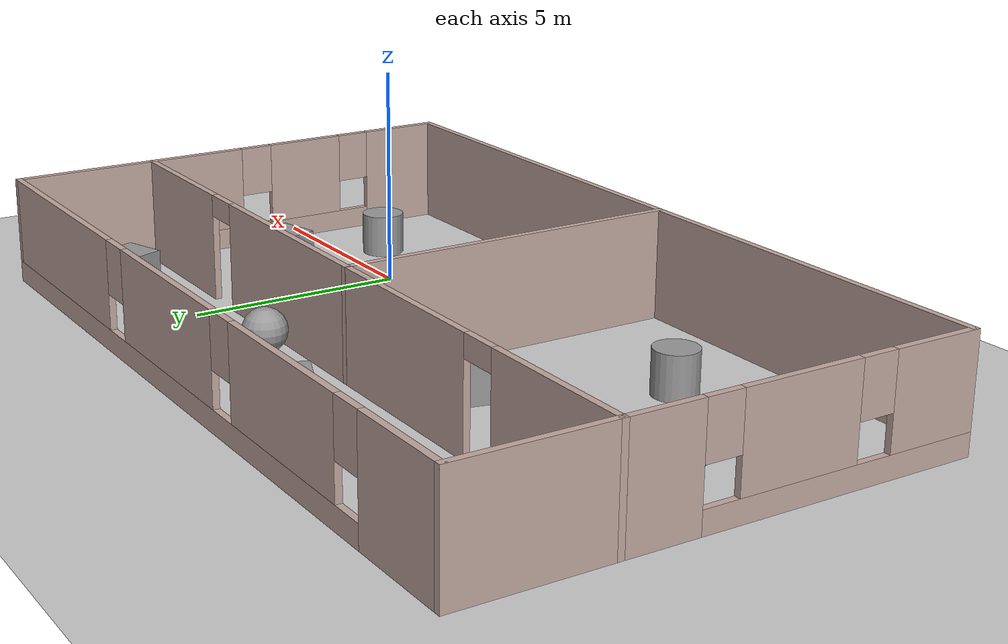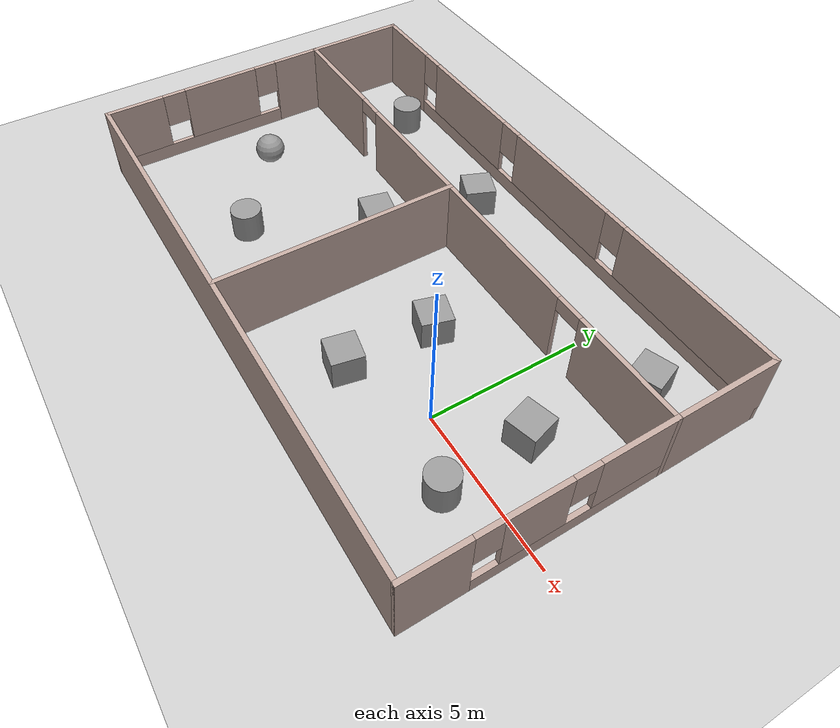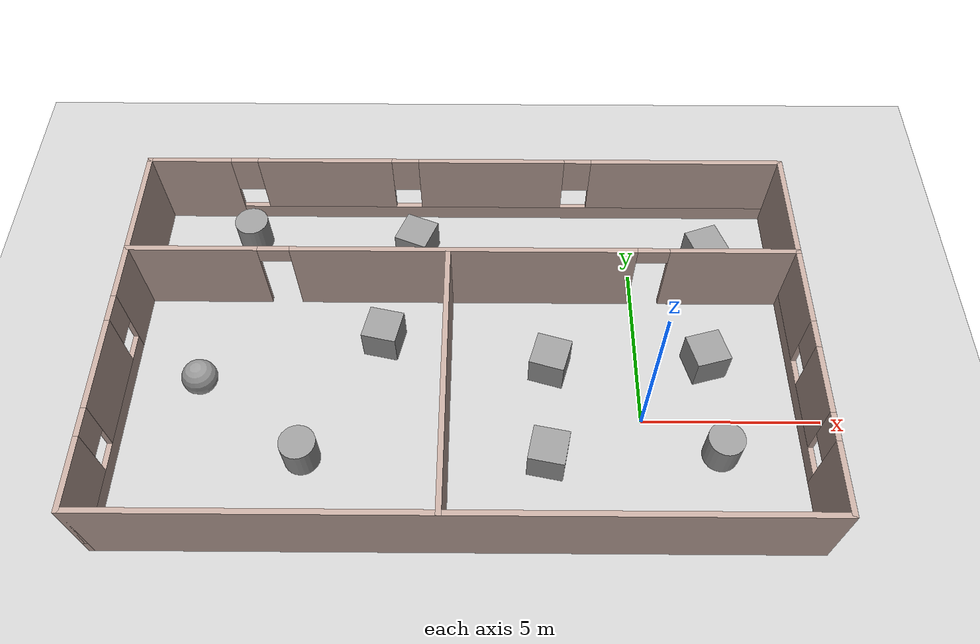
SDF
<sdf version="1.7">
 <world name="default">
  <light name="sun" type="directional">
   <pose>0 0 10 0 -0 0</pose>
   <diffuse>0.8 0.8 0.8 1</diffuse>
   <specular>0.2 0.2 0.2 1</specular>
   <attenuation>
    <range>1000</range>
    <constant>0.9</constant>
    <linear>0.01</linear>
    <quadratic>0.001</quadratic>
   </attenuation>
   <direction>-0.5 0.1 -0.9</direction>
   <spot><inner_angle>0</inner_angle><outer_angle>0</outer_angle><falloff>0</falloff></spot>
  </light>
  <model name="ground_plane">
   <static>1</static>
   <link name="link">
    <collision name="collision">
     <geometry><plane><normal>0 0 1</normal><size>100 100</size></plane></geometry>
     <surface><friction><ode><mu>100</mu><mu2>50</mu2></ode></friction></surface>
    </collision>
    <visual name="visual">
     <cast_shadows>0</cast_shadows>
     <geometry><plane><normal>0 0 1</normal><size>100 100</size></plane></geometry>
     <material>
      <script><uri>file://media/materials/scripts/gazebo.material</uri><name>Gazebo/Grey</name></script>
     </material>
    </visual>
   </link>
  </model>
  <gravity>0 0 -9.8</gravity>
  <magnetic_field>6e-06 2.3e-05 -4.2e-05</magnetic_field>
  <atmosphere type="adiabatic"/>
  <physics type="ode">
   <max_step_size>0.001</max_step_size>
   <real_time_factor>1</real_time_factor>
   <real_time_update_rate>1000</real_time_update_rate>
  </physics>
  <scene><ambient>0.4 0.4 0.4 1</ambient><background>0.7 0.7 0.7 1</background><shadows>1</shadows></scene>
  <spherical_coordinates>
   <surface_model>EARTH_WGS84</surface_model>
   <latitude_deg>0</latitude_deg>
   <longitude_deg>0</longitude_deg>
   <elevation>0</elevation>
   <heading_deg>0</heading_deg>
  </spherical_coordinates>
  <model name="emtry_room">
   <pose>-5.0249 1.84704 0 0 -0 0</pose>
   <link name="Wall_10">
    <pose>9.425 -1.675 0 0 -0 1.5708</pose>
    <visual name="Wall_10_Visual_0">
     <pose>-2.99004 0 1.25 0 -0 0</pose>
     <geometry><box><size>2.01992 0.15 2.5</size></box></geometry>
     <material>
      <script><uri>file://media/materials/scripts/gazebo.material</uri><name>Gazebo/Grey</name></script>
      <ambient>0.760784 0.662745 0.627451 1</ambient>
     </material>
     <meta><layer>0</layer></meta>
    </visual>
    <collision name="Wall_10_Collision_0">
     <geometry><box><size>2.01992 0.15 2.5</size></box></geometry>
     <pose>-2.99004 0 1.25 0 -0 0</pose>
    </collision>
    <visual name="Wall_10_Visual_1">
     <pose>1.00996 0 0.25 0 -0 0</pose>
     <geometry><box><size>5.98008 0.15 0.5</size></box></geometry>
     <material>
      <script><uri>file://media/materials/scripts/gazebo.material</uri><name>Gazebo/Grey</name></script>
      <ambient>0.760784 0.662745 0.627451 1</ambient>
     </material>
     <meta><layer>0</layer></meta>
    </visual>
    <collision name="Wall_10_Collision_1">
     <geometry><box><size>5.98008 0.15 0.5</size></box></geometry>
     <pose>1.00996 0 0.25 0 -0 0</pose>
    </collision>
    <visual name="Wall_10_Visual_2">
     <pose>-0.203813 0 1.5 0 -0 0</pose>
     <geometry><box><size>1.95254 0.15 2</size></box></geometry>
     <material>
      <script><uri>file://media/materials/scripts/gazebo.material</uri><name>Gazebo/Grey</name></script>
      <ambient>0.760784 0.662745 0.627451 1</ambient>
     </material>
     <meta><layer>0</layer></meta>
    </visual>
    <collision name="Wall_10_Collision_2">
     <geometry><box><size>1.95254 0.15 2</size></box></geometry>
     <pose>-0.203813 0 1.5 0 -0 0</pose>
    </collision>
    <visual name="Wall_10_Visual_3">
     <pose>2.78623 0 1.5 0 -0 0</pose>
     <geometry><box><size>2.42754 0.15 2</size></box></geometry>
     <material>
      <script><uri>file://media/materials/scripts/gazebo.material</uri><name>Gazebo/Grey</name></script>
      <ambient>0.760784 0.662745 0.627451 1</ambient>
     </material>
     <meta><layer>0</layer></meta>
    </visual>
    <collision name="Wall_10_Collision_3">
     <geometry><box><size>2.42754 0.15 2</size></box></geometry>
     <pose>2.78623 0 1.5 0 -0 0</pose>
    </collision>
    <visual name="Wall_10_Visual_4">
     <pose>-1.58008 0 1.9 0 -0 0</pose>
     <geometry><box><size>0.8 0.15 1.2</size></box></geometry>
     <material>
      <script><uri>file://media/materials/scripts/gazebo.material</uri><name>Gazebo/Grey</name></script>
      <ambient>0.760784 0.662745 0.627451 1</ambient>
     </material>
     <meta><layer>0</layer></meta>
    </visual>
    <collision name="Wall_10_Collision_4">
     <geometry><box><size>0.8 0.15 1.2</size></box></geometry>
     <pose>-1.58008 0 1.9 0 -0 0</pose>
    </collision>
    <visual name="Wall_10_Visual_5">
     <pose>1.17246 0 1.9 0 -0 0</pose>
     <geometry><box><size>0.8 0.15 1.2</size></box></geometry>
     <material>
      <script><uri>file://media/materials/scripts/gazebo.material</uri><name>Gazebo/Grey</name></script>
      <ambient>0.760784 0.662745 0.627451 1</ambient>
     </material>
     <meta><layer>0</layer></meta>
    </visual>
    <collision name="Wall_10_Collision_5">
     <geometry><box><size>0.8 0.15 1.2</size></box></geometry>
     <pose>1.17246 0 1.9 0 -0 0</pose>
    </collision>
   </link>
   <link name="Wall_11">
    <pose>0 2.25 0 0 -0 3.14159</pose>
    <visual name="Wall_11_Visual_0">
     <pose>-7.6643 0 1.25 0 -0 0</pose>
     <geometry><box><size>3.67141 0.15 2.5</size></box></geometry>
     <material>
      <script><uri>file://media/materials/scripts/gazebo.material</uri><name>Gazebo/Grey</name></script>
      <ambient>0.760784 0.662745 0.627451 1</ambient>
     </material>
     <meta><layer>0</layer></meta>
    </visual>
    <collision name="Wall_11_Collision_0">
     <geometry><box><size>3.67141 0.15 2.5</size></box></geometry>
     <pose>-7.6643 0 1.25 0 -0 0</pose>
    </collision>
    <visual name="Wall_11_Visual_1">
     <pose>-0.035419 0 1.25 0 -0 0</pose>
     <geometry><box><size>9.78634 0.15 2.5</size></box></geometry>
     <material>
      <script><uri>file://media/materials/scripts/gazebo.material</uri><name>Gazebo/Grey</name></script>
      <ambient>0.760784 0.662745 0.627451 1</ambient>
     </material>
     <meta><layer>0</layer></meta>
    </visual>
    <collision name="Wall_11_Collision_1">
     <geometry><box><size>9.78634 0.15 2.5</size></box></geometry>
     <pose>-0.035419 0 1.25 0 -0 0</pose>
    </collision>
    <visual name="Wall_11_Visual_2">
     <pose>7.62888 0 1.25 0 -0 0</pose>
     <geometry><box><size>3.74225 0.15 2.5</size></box></geometry>
     <material>
      <script><uri>file://media/materials/scripts/gazebo.material</uri><name>Gazebo/Grey</name></script>
      <ambient>0.760784 0.662745 0.627451 1</ambient>
     </material>
     <meta><layer>0</layer></meta>
    </visual>
    <collision name="Wall_11_Collision_2">
     <geometry><box><size>3.74225 0.15 2.5</size></box></geometry>
     <pose>7.62888 0 1.25 0 -0 0</pose>
    </collision>
    <visual name="Wall_11_Visual_3">
     <pose>-5.37859 0 2.25 0 -0 0</pose>
     <geometry><box><size>0.9 0.15 0.5</size></box></geometry>
     <material>
      <script><uri>file://media/materials/scripts/gazebo.material</uri><name>Gazebo/Grey</name></script>
      <ambient>0.760784 0.662745 0.627451 1</ambient>
     </material>
     <meta><layer>0</layer></meta>
    </visual>
    <collision name="Wall_11_Collision_3">
     <geometry><box><size>0.9 0.15 0.5</size></box></geometry>
     <pose>-5.37859 0 2.25 0 -0 0</pose>
    </collision>
    <visual name="Wall_11_Visual_4">
     <pose>5.30775 0 2.25 0 -0 0</pose>
     <geometry><box><size>0.9 0.15 0.5</size></box></geometry>
     <material>
      <script><uri>file://media/materials/scripts/gazebo.material</uri><name>Gazebo/Grey</name></script>
      <ambient>0.760784 0.662745 0.627451 1</ambient>
     </material>
     <meta><layer>0</layer></meta>
    </visual>
    <collision name="Wall_11_Collision_4">
     <geometry><box><size>0.9 0.15 0.5</size></box></geometry>
     <pose>5.30775 0 2.25 0 -0 0</pose>
    </collision>
   </link>
   <link name="Wall_12">
    <collision name="Wall_12_Collision">
     <geometry><box><size>0.15 0.15 2.5</size></box></geometry>
     <pose>0 0 1.25 0 -0 0</pose>
    </collision>
    <visual name="Wall_12_Visual">
     <pose>0 0 1.25 0 -0 0</pose>
     <geometry><box><size>0.15 0.15 2.5</size></box></geometry>
     <material>
      <script><uri>file://media/materials/scripts/gazebo.material</uri><name>Gazebo/Grey</name></script>
      <ambient>1 1 1 1</ambient>
     </material>
     <meta><layer>0</layer></meta>
    </visual>
    <pose>-9.425 2.25 0 0 -0 0</pose>
   </link>
   <link name="Wall_14">
    <collision name="Wall_14_Collision">
     <geometry><box><size>8 0.15 2.5</size></box></geometry>
     <pose>0 0 1.25 0 -0 0</pose>
    </collision>
    <visual name="Wall_14_Visual">
     <pose>0 0 1.25 0 -0 0</pose>
     <geometry><box><size>8 0.15 2.5</size></box></geometry>
     <material>
      <script><uri>file://media/materials/scripts/gazebo.material</uri><name>Gazebo/Grey</name></script>
      <ambient>0.760784 0.662745 0.627451 1</ambient>
     </material>
     <meta><layer>0</layer></meta>
    </visual>
    <pose>-0.392584 -1.67222 0 0 -0 -1.5708</pose>
   </link>
   <link name="Wall_16">
    <collision name="Wall_16_Collision">
     <geometry><box><size>3.5 0.15 2.5</size></box></geometry>
     <pose>0 0 1.25 0 -0 0</pose>
    </collision>
    <visual name="Wall_16_Visual">
     <pose>0 0 1.25 0 -0 0</pose>
     <geometry><box><size>3.5 0.15 2.5</size></box></geometry>
     <material>
      <script><uri>file://media/materials/scripts/gazebo.material</uri><name>Gazebo/Grey</name></script>
      <ambient>0.760784 0.662745 0.627451 1</ambient>
     </material>
     <meta><layer>0</layer></meta>
    </visual>
    <pose>-9.425 3.925 0 0 -0 1.5708</pose>
   </link>
   <link name="Wall_17">
    <pose>0 5.6 0 0 -0 0</pose>
    <visual name="Wall_17_Visual_0">
     <pose>-8.24468 0 1.25 0 -0 0</pose>
     <geometry><box><size>2.51064 0.15 2.5</size></box></geometry>
     <material>
      <script><uri>file://media/materials/scripts/gazebo.material</uri><name>Gazebo/Grey</name></script>
      <ambient>0.760784 0.662745 0.627451 1</ambient>
     </material>
     <meta><layer>0</layer></meta>
    </visual>
    <collision name="Wall_17_Collision_0">
     <geometry><box><size>2.51064 0.15 2.5</size></box></geometry>
     <pose>-8.24468 0 1.25 0 -0 0</pose>
    </collision>
    <visual name="Wall_17_Visual_1">
     <pose>1.25532 0 0.25 0 -0 0</pose>
     <geometry><box><size>16.4894 0.15 0.5</size></box></geometry>
     <material>
      <script><uri>file://media/materials/scripts/gazebo.material</uri><name>Gazebo/Grey</name></script>
      <ambient>0.760784 0.662745 0.627451 1</ambient>
     </material>
     <meta><layer>0</layer></meta>
    </visual>
    <collision name="Wall_17_Collision_1">
     <geometry><box><size>16.4894 0.15 0.5</size></box></geometry>
     <pose>1.25532 0 0.25 0 -0 0</pose>
    </collision>
    <visual name="Wall_17_Visual_2">
     <pose>-4.18241 0 1.5 0 -0 0</pose>
     <geometry><box><size>4.0139 0.15 2</size></box></geometry>
     <material>
      <script><uri>file://media/materials/scripts/gazebo.material</uri><name>Gazebo/Grey</name></script>
      <ambient>0.760784 0.662745 0.627451 1</ambient>
     </material>
     <meta><layer>0</layer></meta>
    </visual>
    <collision name="Wall_17_Collision_2">
     <geometry><box><size>4.0139 0.15 2</size></box></geometry>
     <pose>-4.18241 0 1.5 0 -0 0</pose>
    </collision>
    <visual name="Wall_17_Visual_3">
     <pose>0.803414 0 1.5 0 -0 0</pose>
     <geometry><box><size>4.35775 0.15 2</size></box></geometry>
     <material>
      <script><uri>file://media/materials/scripts/gazebo.material</uri><name>Gazebo/Grey</name></script>
      <ambient>0.760784 0.662745 0.627451 1</ambient>
     </material>
     <meta><layer>0</layer></meta>
    </visual>
    <collision name="Wall_17_Collision_3">
     <geometry><box><size>4.35775 0.15 2</size></box></geometry>
     <pose>0.803414 0 1.5 0 -0 0</pose>
    </collision>
    <visual name="Wall_17_Visual_4">
     <pose>6.64114 0 1.5 0 -0 0</pose>
     <geometry><box><size>5.71771 0.15 2</size></box></geometry>
     <material>
      <script><uri>file://media/materials/scripts/gazebo.material</uri><name>Gazebo/Grey</name></script>
      <ambient>0.760784 0.662745 0.627451 1</ambient>
     </material>
     <meta><layer>0</layer></meta>
    </visual>
    <collision name="Wall_17_Collision_4">
     <geometry><box><size>5.71771 0.15 2</size></box></geometry>
     <pose>6.64114 0 1.5 0 -0 0</pose>
    </collision>
    <visual name="Wall_17_Visual_5">
     <pose>-6.58936 0 1.9 0 -0 0</pose>
     <geometry><box><size>0.8 0.15 1.2</size></box></geometry>
     <material>
      <script><uri>file://media/materials/scripts/gazebo.material</uri><name>Gazebo/Grey</name></script>
      <ambient>0.760784 0.662745 0.627451 1</ambient>
     </material>
     <meta><layer>0</layer></meta>
    </visual>
    <collision name="Wall_17_Collision_5">
     <geometry><box><size>0.8 0.15 1.2</size></box></geometry>
     <pose>-6.58936 0 1.9 0 -0 0</pose>
    </collision>
    <visual name="Wall_17_Visual_6">
     <pose>-1.77546 0 1.9 0 -0 0</pose>
     <geometry><box><size>0.8 0.15 1.2</size></box></geometry>
     <material>
      <script><uri>file://media/materials/scripts/gazebo.material</uri><name>Gazebo/Grey</name></script>
      <ambient>0.760784 0.662745 0.627451 1</ambient>
     </material>
     <meta><layer>0</layer></meta>
    </visual>
    <collision name="Wall_17_Collision_6">
     <geometry><box><size>0.8 0.15 1.2</size></box></geometry>
     <pose>-1.77546 0 1.9 0 -0 0</pose>
    </collision>
    <visual name="Wall_17_Visual_7">
     <pose>3.38229 0 1.9 0 -0 0</pose>
     <geometry><box><size>0.8 0.15 1.2</size></box></geometry>
     <material>
      <script><uri>file://media/materials/scripts/gazebo.material</uri><name>Gazebo/Grey</name></script>
      <ambient>0.760784 0.662745 0.627451 1</ambient>
     </material>
     <meta><layer>0</layer></meta>
    </visual>
    <collision name="Wall_17_Collision_7">
     <geometry><box><size>0.8 0.15 1.2</size></box></geometry>
     <pose>3.38229 0 1.9 0 -0 0</pose>
    </collision>
   </link>
   <link name="Wall_18">
    <collision name="Wall_18_Collision">
     <geometry><box><size>3.5 0.15 2.5</size></box></geometry>
     <pose>0 0 1.25 0 -0 0</pose>
    </collision>
    <visual name="Wall_18_Visual">
     <pose>0 0 1.25 0 -0 0</pose>
     <geometry><box><size>3.5 0.15 2.5</size></box></geometry>
     <material>
      <script><uri>file://media/materials/scripts/gazebo.material</uri><name>Gazebo/Grey</name></script>
      <ambient>0.760784 0.662745 0.627451 1</ambient>
     </material>
     <meta><layer>0</layer></meta>
    </visual>
    <pose>9.425 3.925 0 0 -0 -1.5708</pose>
   </link>
   <link name="Wall_8">
    <pose>-9.425 -1.675 0 0 -0 -1.5708</pose>
    <visual name="Wall_8_Visual_0">
     <pose>-3.13319 0 1.25 0 -0 0</pose>
     <geometry><box><size>1.73362 0.15 2.5</size></box></geometry>
     <material>
      <script><uri>file://media/materials/scripts/gazebo.material</uri><name>Gazebo/Grey</name></script>
      <ambient>0.760784 0.662745 0.627451 1</ambient>
     </material>
     <meta><layer>0</layer></meta>
    </visual>
    <collision name="Wall_8_Collision_0">
     <geometry><box><size>1.73362 0.15 2.5</size></box></geometry>
     <pose>-3.13319 0 1.25 0 -0 0</pose>
    </collision>
    <visual name="Wall_8_Visual_1">
     <pose>0.866812 0 0.25 0 -0 0</pose>
     <geometry><box><size>6.26638 0.15 0.5</size></box></geometry>
     <material>
      <script><uri>file://media/materials/scripts/gazebo.material</uri><name>Gazebo/Grey</name></script>
      <ambient>0.760784 0.662745 0.627451 1</ambient>
     </material>
     <meta><layer>0</layer></meta>
    </visual>
    <collision name="Wall_8_Collision_1">
     <geometry><box><size>6.26638 0.15 0.5</size></box></geometry>
     <pose>0.866812 0 0.25 0 -0 0</pose>
    </collision>
    <visual name="Wall_8_Visual_2">
     <pose>-0.143146 0 1.5 0 -0 0</pose>
     <geometry><box><size>2.64646 0.15 2</size></box></geometry>
     <material>
      <script><uri>file://media/materials/scripts/gazebo.material</uri><name>Gazebo/Grey</name></script>
      <ambient>0.760784 0.662745 0.627451 1</ambient>
     </material>
     <meta><layer>0</layer></meta>
    </visual>
    <collision name="Wall_8_Collision_2">
     <geometry><box><size>2.64646 0.15 2</size></box></geometry>
     <pose>-0.143146 0 1.5 0 -0 0</pose>
    </collision>
    <visual name="Wall_8_Visual_3">
     <pose>2.99004 0 1.5 0 -0 0</pose>
     <geometry><box><size>2.01992 0.15 2</size></box></geometry>
     <material>
      <script><uri>file://media/materials/scripts/gazebo.material</uri><name>Gazebo/Grey</name></script>
      <ambient>0.760784 0.662745 0.627451 1</ambient>
     </material>
     <meta><layer>0</layer></meta>
    </visual>
    <collision name="Wall_8_Collision_3">
     <geometry><box><size>2.01992 0.15 2</size></box></geometry>
     <pose>2.99004 0 1.5 0 -0 0</pose>
    </collision>
    <visual name="Wall_8_Visual_4">
     <pose>-1.86638 0 1.9 0 -0 0</pose>
     <geometry><box><size>0.8 0.15 1.2</size></box></geometry>
     <material>
      <script><uri>file://media/materials/scripts/gazebo.material</uri><name>Gazebo/Grey</name></script>
      <ambient>0.760784 0.662745 0.627451 1</ambient>
     </material>
     <meta><layer>0</layer></meta>
    </visual>
    <collision name="Wall_8_Collision_4">
     <geometry><box><size>0.8 0.15 1.2</size></box></geometry>
     <pose>-1.86638 0 1.9 0 -0 0</pose>
    </collision>
    <visual name="Wall_8_Visual_5">
     <pose>1.58008 0 1.9 0 -0 0</pose>
     <geometry><box><size>0.8 0.15 1.2</size></box></geometry>
     <material>
      <script><uri>file://media/materials/scripts/gazebo.material</uri><name>Gazebo/Grey</name></script>
      <ambient>0.760784 0.662745 0.627451 1</ambient>
     </material>
     <meta><layer>0</layer></meta>
    </visual>
    <collision name="Wall_8_Collision_5">
     <geometry><box><size>0.8 0.15 1.2</size></box></geometry>
     <pose>1.58008 0 1.9 0 -0 0</pose>
    </collision>
   </link>
   <link name="Wall_9">
    <collision name="Wall_9_Collision">
     <geometry><box><size>19 0.15 2.5</size></box></geometry>
     <pose>0 0 1.25 0 -0 0</pose>
    </collision>
    <visual name="Wall_9_Visual">
     <pose>0 0 1.25 0 -0 0</pose>
     <geometry><box><size>19 0.15 2.5</size></box></geometry>
     <material>
      <script><uri>file://media/materials/scripts/gazebo.material</uri><name>Gazebo/Grey</name></script>
      <ambient>0.760784 0.662745 0.627451 1</ambient>
     </material>
     <meta><layer>0</layer></meta>
    </visual>
    <pose>0 -5.6 0 0 -0 0</pose>
   </link>
   <static>1</static>
  </model>
  <model name="unit_box">
   <pose>-7.29066 2.56737 0.499996 -0 -9e-06 -0.217998</pose>
   <link name="link">
    <inertial>
     <mass>1</mass>
     <inertia>
      <ixx>0.166667</ixx>
      <ixy>0</ixy>
      <ixz>0</ixz>
      <iyy>0.166667</iyy>
      <iyz>0</iyz>
      <izz>0.166667</izz>
     </inertia>
    </inertial>
    <collision name="collision"><geometry><box><size>1 1 1</size></box></geometry></collision>
    <visual name="visual">
     <geometry><box><size>1 1 1</size></box></geometry>
     <material>
      <script><name>Gazebo/Grey</name><uri>file://media/materials/scripts/gazebo.material</uri></script>
     </material>
    </visual>
   </link>
  </model>
  <model name="unit_box_0">
   <pose>1.91013 1.83384 0.5 0 -0 0.272595</pose>
   <link name="link">
    <inertial>
     <mass>1</mass>
     <inertia>
      <ixx>0.166667</ixx>
      <ixy>0</ixy>
      <ixz>0</ixz>
      <iyy>0.166667</iyy>
      <iyz>0</iyz>
      <izz>0.166667</izz>
     </inertia>
    </inertial>
    <collision name="collision"><geometry><box><size>1 1 1</size></box></geometry></collision>
    <visual name="visual">
     <geometry><box><size>1 1 1</size></box></geometry>
     <material>
      <script><name>Gazebo/Grey</name><uri>file://media/materials/scripts/gazebo.material</uri></script>
     </material>
    </visual>
   </link>
  </model>
  <model name="unit_box_1">
   <pose>-2.52025 1.68305 0.5 0 -0 -0.286547</pose>
   <link name="link">
    <inertial>
     <mass>1</mass>
     <inertia>
      <ixx>0.166667</ixx>
      <ixy>0</ixy>
      <ixz>0</ixz>
      <iyy>0.166667</iyy>
      <iyz>0</iyz>
      <izz>0.166667</izz>
     </inertia>
    </inertial>
    <collision name="collision"><geometry><box><size>1 1 1</size></box></geometry></collision>
    <visual name="visual">
     <geometry><box><size>1 1 1</size></box></geometry>
     <material>
      <script><name>Gazebo/Grey</name><uri>file://media/materials/scripts/gazebo.material</uri></script>
     </material>
    </visual>
   </link>
  </model>
  <model name="unit_box_2">
   <pose>-2.64533 -1.21829 0.499995 1e-05 -0 -0.196092</pose>
   <link name="link">
    <inertial>
     <mass>1</mass>
     <inertia>
      <ixx>0.166667</ixx>
      <ixy>0</ixy>
      <ixz>0</ixz>
      <iyy>0.166667</iyy>
      <iyz>0</iyz>
      <izz>0.166667</izz>
     </inertia>
    </inertial>
    <collision name="collision"><geometry><box><size>1 1 1</size></box></geometry></collision>
    <visual name="visual">
     <geometry><box><size>1 1 1</size></box></geometry>
     <material>
      <script><name>Gazebo/Grey</name><uri>file://media/materials/scripts/gazebo.material</uri></script>
     </material>
    </visual>
   </link>
  </model>
  <model name="unit_box_3">
   <pose>2.31186 5.64749 0.5 0 -0 0.344046</pose>
   <link name="link">
    <inertial>
     <mass>1</mass>
     <inertia>
      <ixx>0.166667</ixx>
      <ixy>0</ixy>
      <ixz>0</ixz>
      <iyy>0.166667</iyy>
      <iyz>0</iyz>
      <izz>0.166667</izz>
     </inertia>
    </inertial>
    <collision name="collision"><geometry><box><size>1 1 1</size></box></geometry></collision>
    <visual name="visual">
     <geometry><box><size>1 1 1</size></box></geometry>
     <material>
      <script><name>Gazebo/Grey</name><uri>file://media/materials/scripts/gazebo.material</uri></script>
     </material>
    </visual>
   </link>
  </model>
  <model name="unit_box_4">
   <pose>-6.48343 6.00171 0.499995 1e-05 -0 -0.386595</pose>
   <link name="link">
    <inertial>
     <mass>1</mass>
     <inertia>
      <ixx>0.166667</ixx>
      <ixy>0</ixy>
      <ixz>0</ixz>
      <iyy>0.166667</iyy>
      <iyz>0</iyz>
      <izz>0.166667</izz>
     </inertia>
    </inertial>
    <collision name="collision"><geometry><box><size>1 1 1</size></box></geometry></collision>
    <visual name="visual">
     <geometry><box><size>1 1 1</size></box></geometry>
     <material>
      <script><name>Gazebo/Grey</name><uri>file://media/materials/scripts/gazebo.material</uri></script>
     </material>
    </visual>
   </link>
  </model>
  <model name="unit_cylinder">
   <pose>-9.31262 -1.18114 0.499998 3e-06 -3e-06 0</pose>
   <link name="link">
    <inertial>
     <mass>1</mass>
     <inertia><ixx>0.145833</ixx><ixy>0</ixy><ixz>0</ixz><iyy>0.145833</iyy><iyz>0</iyz><izz>0.125</izz></inertia>
    </inertial>
    <collision name="collision">
     <geometry><cylinder><radius>0.5</radius><length>1</length></cylinder></geometry>
    </collision>
    <visual name="visual">
     <geometry><cylinder><radius>0.5</radius><length>1</length></cylinder></geometry>
     <material>
      <script><name>Gazebo/Grey</name><uri>file://media/materials/scripts/gazebo.material</uri></script>
     </material>
    </visual>
   </link>
  </model>
  <model name="unit_cylinder_0">
   <pose>2.0714 -1.0059 0.499992 -3e-06 3e-06 0</pose>
   <link name="link">
    <inertial>
     <mass>1</mass>
     <inertia><ixx>0.145833</ixx><ixy>0</ixy><ixz>0</ixz><iyy>0.145833</iyy><iyz>0</iyz><izz>0.125</izz></inertia>
    </inertial>
    <collision name="collision">
     <geometry><cylinder><radius>0.5</radius><length>1</length></cylinder></geometry>
    </collision>
    <visual name="visual">
     <geometry><cylinder><radius>0.5</radius><length>1</length></cylinder></geometry>
     <material>
      <script><name>Gazebo/Grey</name><uri>file://media/materials/scripts/gazebo.material</uri></script>
     </material>
    </visual>
   </link>
  </model>
  <model name="unit_cylinder_1">
   <pose>-11.5657 6.33779 0.499998 3e-06 -4e-06 0</pose>
   <link name="link">
    <inertial>
     <mass>1</mass>
     <inertia><ixx>0.145833</ixx><ixy>0</ixy><ixz>0</ixz><iyy>0.145833</iyy><iyz>0</iyz><izz>0.125</izz></inertia>
    </inertial>
    <collision name="collision">
     <geometry><cylinder><radius>0.5</radius><length>1</length></cylinder></geometry>
    </collision>
    <visual name="visual">
     <geometry><cylinder><radius>0.5</radius><length>1</length></cylinder></geometry>
     <material>
      <script><name>Gazebo/Grey</name><uri>file://media/materials/scripts/gazebo.material</uri></script>
     </material>
    </visual>
   </link>
  </model>
  <model name="unit_sphere">
   <pose>-12.3762 1.08135 0.5 0 -0 0</pose>
   <link name="link">
    <inertial>
     <mass>1</mass>
     <inertia><ixx>0.1</ixx><ixy>0</ixy><ixz>0</ixz><iyy>0.1</iyy><iyz>0</iyz><izz>0.1</izz></inertia>
    </inertial>
    <collision name="collision"><geometry><sphere><radius>0.5</radius></sphere></geometry></collision>
    <visual name="visual">
     <geometry><sphere><radius>0.5</radius></sphere></geometry>
     <material>
      <script><name>Gazebo/Grey</name><uri>file://media/materials/scripts/gazebo.material</uri></script>
     </material>
    </visual>
   </link>
  </model>
  <model name="unit_sphere_0">
   <pose>-2.92895 4.73356 0.5 0 -0 0</pose>
   <link name="link">
    <inertial>
     <mass>1</mass>
     <inertia><ixx>0.1</ixx><ixy>0</ixy><ixz>0</ixz><iyy>0.1</iyy><iyz>0</iyz><izz>0.1</izz></inertia>
    </inertial>
    <collision name="collision"><geometry><sphere><radius>0.5</radius></sphere></geometry></collision>
    <visual name="visual">
     <geometry><sphere><radius>0.5</radius></sphere></geometry>
     <material>
      <script><name>Gazebo/Grey</name><uri>file://media/materials/scripts/gazebo.material</uri></script>
     </material>
    </visual>
   </link>
  </model>
 </world>
</sdf>
